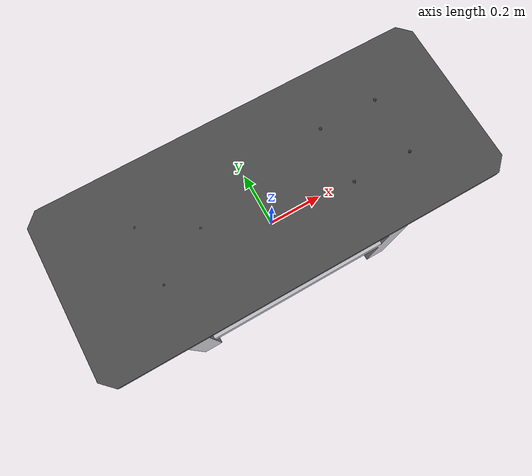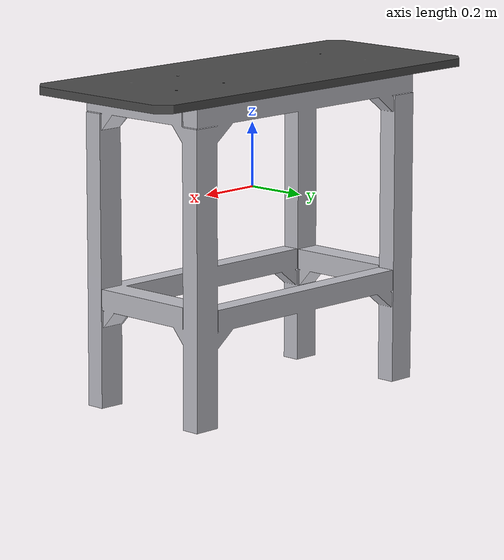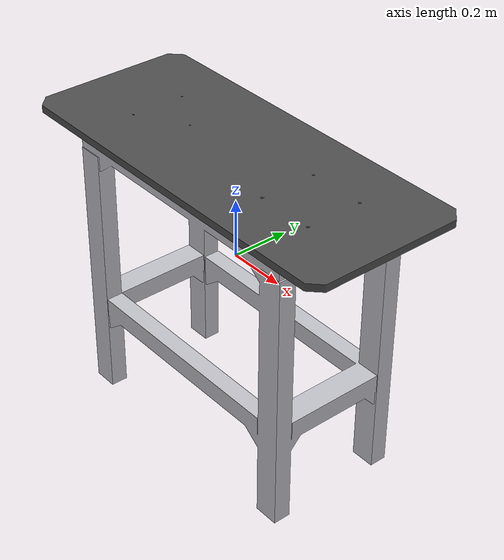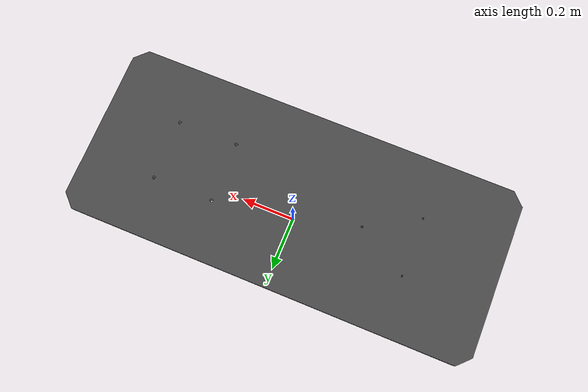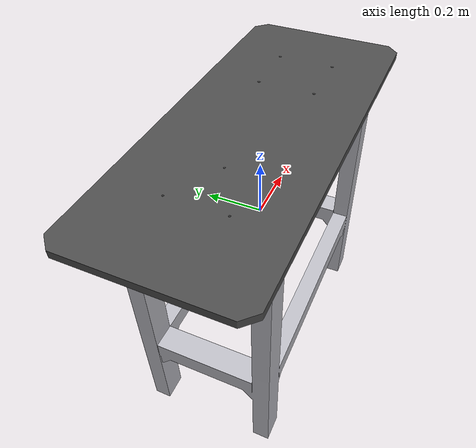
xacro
<?xml version="1.0" ?>
<robot name="env" xmlns:xacro="http://www.ros.org/wiki/xacro" >

  <link name="pieds_table_link">
    <visual>
      <origin rpy="0 0 0" xyz="0 0 0"/>
      <geometry>
        <mesh filename="package://staubli_tx2_60l_moveit/meshes/env/pieds_table.stl" scale="1 1 1"/>
      </geometry>
      <material name="silver"/>
    </visual>
    <collision>
      <origin rpy="0 0 0" xyz="0 0 0"/>
      <geometry>
        <mesh filename="package://staubli_tx2_60l_moveit/meshes/env/pieds_table.stl" scale="1 1 1"/>
      </geometry>
    </collision>
  </link>
    <link name="plateau_table_staubli_link">
    <visual>
      <origin rpy="0 0 0" xyz="0 0 0"/>
      <geometry>
        <mesh filename="package://staubli_tx2_60l_moveit/meshes/env/plateau_table_staubli.stl" scale="1 1 1"/>
      </geometry>
      <material name="dark_gray"/>
    </visual>
    <collision>
      <origin rpy="0 0 0" xyz="0 0 0"/>
      <geometry>
        <mesh filename="package://staubli_tx2_60l_moveit/meshes/env/plateau_table_staubli.stl" scale="1 1 1"/>
      </geometry>
    </collision>
  </link>

  <joint name="pieds_plateau_table_staubli" type="fixed">
    <origin rpy="1.57079 0 3.14" xyz="-0.134 0 0.352" />
    <parent link="pieds_table_link" />
    <child link="plateau_table_staubli_link" />
  </joint>

</robot>
